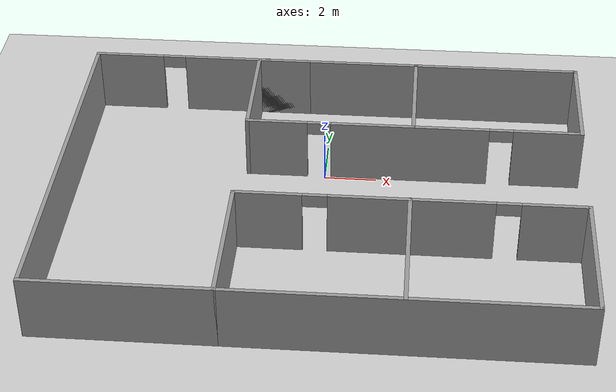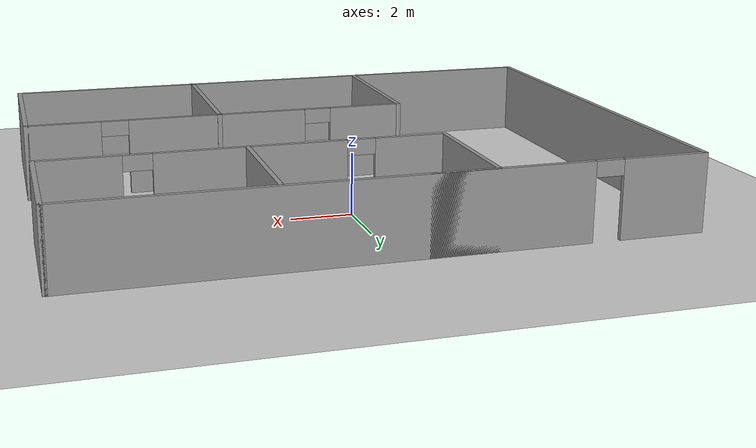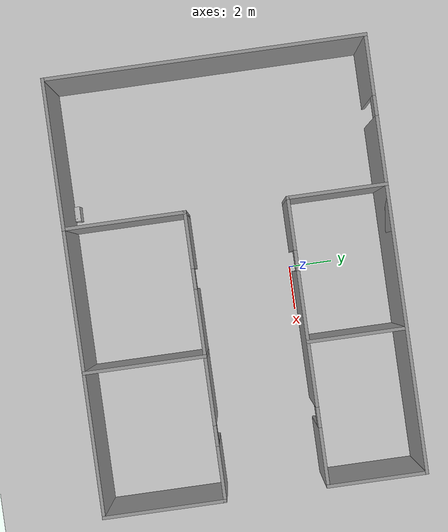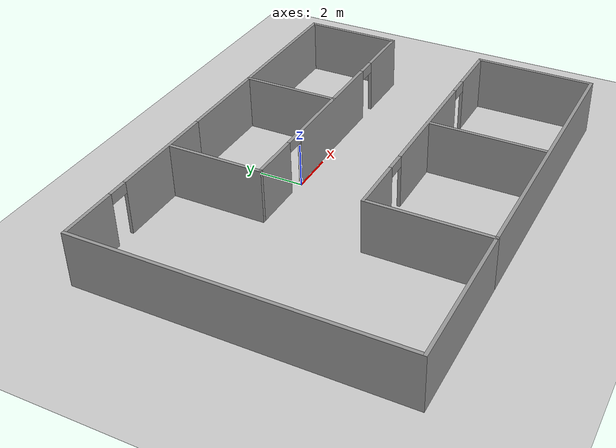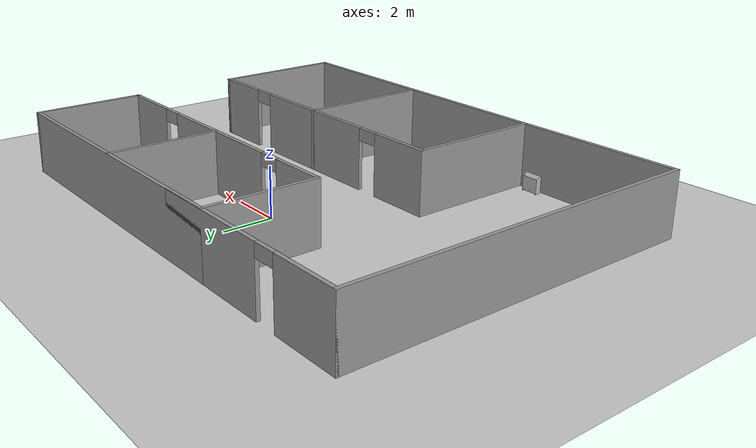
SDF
<sdf version="1.7">
 <world name="default">
  <light name="sun" type="directional">
   <pose>0 0 10 0 -0 0</pose>
   <diffuse>0.8 0.8 0.8 1</diffuse>
   <specular>0.2 0.2 0.2 1</specular>
   <attenuation>
    <range>1000</range>
    <constant>0.9</constant>
    <linear>0.01</linear>
    <quadratic>0.001</quadratic>
   </attenuation>
   <direction>-0.5 0.1 -0.9</direction>
   <spot><inner_angle>0</inner_angle><outer_angle>0</outer_angle><falloff>0</falloff></spot>
  </light>
  <model name="ground_plane">
   <static>1</static>
   <link name="link">
    <collision name="collision">
     <geometry><plane><normal>0 0 1</normal><size>100 100</size></plane></geometry>
     <surface>
      <contact><collide_bitmask>65535</collide_bitmask></contact>
      <friction><ode><mu>100</mu><mu2>50</mu2></ode></friction>
     </surface>
    </collision>
    <visual name="visual">
     <cast_shadows>0</cast_shadows>
     <geometry><plane><normal>0 0 1</normal><size>100 100</size></plane></geometry>
     <material>
      <script><uri>file://media/materials/scripts/gazebo.material</uri><name>Gazebo/Grey</name></script>
     </material>
    </visual>
   </link>
  </model>
  <gravity>0 0 -9.8</gravity>
  <magnetic_field>6e-06 2.3e-05 -4.2e-05</magnetic_field>
  <atmosphere type="adiabatic"/>
  <physics type="ode">
   <max_step_size>0.001</max_step_size>
   <real_time_factor>1</real_time_factor>
   <real_time_update_rate>1000</real_time_update_rate>
  </physics>
  <scene><ambient>0.4 0.4 0.4 1</ambient><background>0.7 0.7 0.7 1</background><shadows>1</shadows></scene>
  <spherical_coordinates>
   <surface_model>EARTH_WGS84</surface_model>
   <latitude_deg>0</latitude_deg>
   <longitude_deg>0</longitude_deg>
   <elevation>0</elevation>
   <heading_deg>0</heading_deg>
  </spherical_coordinates>
  <model name="1st_floor">
   <pose>0.067463 -2.62311 0 0 -0 0</pose>
   <link name="Wall_10">
    <collision name="Wall_10_Collision">
     <geometry><box><size>4.5 0.15 2.5</size></box></geometry>
     <pose>0 0 1.25 0 -0 0</pose>
    </collision>
    <visual name="Wall_10_Visual">
     <pose>0 0 1.25 0 -0 0</pose>
     <geometry><box><size>4.5 0.15 2.5</size></box></geometry>
     <material>
      <script><uri>file://media/materials/scripts/gazebo.material</uri><name>Gazebo/Grey</name></script>
      <ambient>1 1 1 1</ambient>
     </material>
     <meta><layer>0</layer></meta>
    </visual>
    <pose>-3.06746 4.95011 0 0 -0 1.5708</pose>
   </link>
   <link name="Wall_11">
    <collision name="Wall_11_Collision">
     <geometry><box><size>12.8825 0.15 2.5</size></box></geometry>
     <pose>0 0 1.25 0 -0 0</pose>
    </collision>
    <visual name="Wall_11_Visual">
     <pose>0 0 1.25 0 -0 0</pose>
     <geometry><box><size>12.8825 0.15 2.5</size></box></geometry>
     <material>
      <script><uri>file://media/materials/scripts/gazebo.material</uri><name>Gazebo/Grey</name></script>
      <ambient>1 1 1 1</ambient>
     </material>
     <meta><layer>0</layer></meta>
    </visual>
    <pose>3.29904 7.12511 0 0 -0 0</pose>
   </link>
   <link name="Wall_12">
    <collision name="Wall_12_Collision">
     <geometry><box><size>4.5 0.15 2.5</size></box></geometry>
     <pose>0 0 1.25 0 -0 0</pose>
    </collision>
    <visual name="Wall_12_Visual">
     <pose>0 0 1.25 0 -0 0</pose>
     <geometry><box><size>4.5 0.15 2.5</size></box></geometry>
     <material>
      <script><uri>file://media/materials/scripts/gazebo.material</uri><name>Gazebo/Grey</name></script>
      <ambient>1 1 1 1</ambient>
     </material>
     <meta><layer>0</layer></meta>
    </visual>
    <pose>9.66554 4.95011 0 0 -0 -1.5708</pose>
   </link>
   <link name="Wall_14">
    <collision name="Wall_14_Collision">
     <geometry><box><size>6.74807 0.15 2.5</size></box></geometry>
     <pose>0 0 1.25 0 -0 0</pose>
    </collision>
    <visual name="Wall_14_Visual">
     <pose>0 0 1.25 0 -0 0</pose>
     <geometry><box><size>6.74807 0.15 2.5</size></box></geometry>
     <material>
      <script><uri>file://media/materials/scripts/gazebo.material</uri><name>Gazebo/Grey</name></script>
      <ambient>1 1 1 1</ambient>
     </material>
     <meta><layer>0</layer></meta>
    </visual>
    <pose>-6.3665 -7.125 0 0 -0 -3.14156</pose>
   </link>
   <link name="Wall_15">
    <collision name="Wall_15_Collision">
     <geometry><box><size>14.4002 0.15 2.5</size></box></geometry>
     <pose>0 0 1.25 0 -0 0</pose>
    </collision>
    <visual name="Wall_15_Visual">
     <pose>0 0 1.25 0 -0 0</pose>
     <geometry><box><size>14.4002 0.15 2.5</size></box></geometry>
     <material>
      <script><uri>file://media/materials/scripts/gazebo.material</uri><name>Gazebo/Grey</name></script>
      <ambient>1 1 1 1</ambient>
     </material>
     <meta><layer>0</layer></meta>
    </visual>
    <pose>-9.6655 1e-06 0 0 -0 1.57079</pose>
   </link>
   <link name="Wall_16">
    <pose>-5.36546 7.12511 0 0 -0 0</pose>
    <visual name="Wall_16_Visual_0">
     <pose>-2.99381 0 1.25 0 -0 0</pose>
     <geometry><box><size>2.76237 0.15 2.5</size></box></geometry>
     <material>
      <script><uri>file://media/materials/scripts/gazebo.material</uri><name>Gazebo/Grey</name></script>
      <ambient>1 1 1 1</ambient>
     </material>
     <meta><layer>0</layer></meta>
    </visual>
    <collision name="Wall_16_Collision_0">
     <geometry><box><size>2.76237 0.15 2.5</size></box></geometry>
     <pose>-2.99381 0 1.25 0 -0 0</pose>
    </collision>
    <visual name="Wall_16_Visual_1">
     <pose>1.83119 0 1.25 0 -0 0</pose>
     <geometry><box><size>5.08763 0.15 2.5</size></box></geometry>
     <material>
      <script><uri>file://media/materials/scripts/gazebo.material</uri><name>Gazebo/Grey</name></script>
      <ambient>1 1 1 1</ambient>
     </material>
     <meta><layer>0</layer></meta>
    </visual>
    <collision name="Wall_16_Collision_1">
     <geometry><box><size>5.08763 0.15 2.5</size></box></geometry>
     <pose>1.83119 0 1.25 0 -0 0</pose>
    </collision>
    <visual name="Wall_16_Visual_2">
     <pose>-1.16263 0 2.25 0 -0 0</pose>
     <geometry><box><size>0.9 0.15 0.5</size></box></geometry>
     <material>
      <script><uri>file://media/materials/scripts/gazebo.material</uri><name>Gazebo/Grey</name></script>
      <ambient>1 1 1 1</ambient>
     </material>
     <meta><layer>0</layer></meta>
    </visual>
    <collision name="Wall_16_Collision_2">
     <geometry><box><size>0.9 0.15 0.5</size></box></geometry>
     <pose>-1.16263 0 2.25 0 -0 0</pose>
    </collision>
   </link>
   <link name="Wall_18">
    <collision name="Wall_18_Collision">
     <geometry><box><size>5.5 0.15 2.5</size></box></geometry>
     <pose>0 0 1.25 0 -0 0</pose>
    </collision>
    <visual name="Wall_18_Visual">
     <pose>0 0 1.25 0 -0 0</pose>
     <geometry><box><size>5.5 0.15 2.5</size></box></geometry>
     <material>
      <script><uri>file://media/materials/scripts/gazebo.material</uri><name>Gazebo/Grey</name></script>
      <ambient>1 1 1 1</ambient>
     </material>
     <meta><layer>0</layer></meta>
    </visual>
    <pose>3.28854 -4.44389 0 0 -0 -1.5708</pose>
   </link>
   <link name="Wall_22">
    <collision name="Wall_22_Collision">
     <geometry><box><size>4.45857 0.15 2.5</size></box></geometry>
     <pose>0 0 1.25 0 -0 0</pose>
    </collision>
    <visual name="Wall_22_Visual">
     <pose>0 0 1.25 0 -0 0</pose>
     <geometry><box><size>4.45857 0.15 2.5</size></box></geometry>
     <material>
      <script><uri>file://media/materials/scripts/gazebo.material</uri><name>Gazebo/Grey</name></script>
      <ambient>1 1 1 1</ambient>
     </material>
     <meta><layer>0</layer></meta>
    </visual>
    <pose>3.28854 4.92961 0 0 -0 1.5708</pose>
   </link>
   <link name="Wall_3">
    <pose>3.29904 -1.77489 0 0 -0 0</pose>
    <visual name="Wall_3_Visual_0">
     <pose>-5.15805 0 1.25 0 -0 0</pose>
     <geometry><box><size>2.56691 0.15 2.5</size></box></geometry>
     <material>
      <script><uri>file://media/materials/scripts/gazebo.material</uri><name>Gazebo/Grey</name></script>
      <ambient>1 1 1 1</ambient>
     </material>
     <meta><layer>0</layer></meta>
    </visual>
    <collision name="Wall_3_Collision_0">
     <geometry><box><size>2.56691 0.15 2.5</size></box></geometry>
     <pose>-5.15805 0 1.25 0 -0 0</pose>
    </collision>
    <visual name="Wall_3_Visual_1">
     <pose>0.040515 0 1.25 0 -0 0</pose>
     <geometry><box><size>6.03022 0.15 2.5</size></box></geometry>
     <material>
      <script><uri>file://media/materials/scripts/gazebo.material</uri><name>Gazebo/Grey</name></script>
      <ambient>1 1 1 1</ambient>
     </material>
     <meta><layer>0</layer></meta>
    </visual>
    <collision name="Wall_3_Collision_1">
     <geometry><box><size>6.03022 0.15 2.5</size></box></geometry>
     <pose>0.040515 0 1.25 0 -0 0</pose>
    </collision>
    <visual name="Wall_3_Visual_2">
     <pose>5.19856 0 1.25 0 -0 0</pose>
     <geometry><box><size>2.48588 0.15 2.5</size></box></geometry>
     <material>
      <script><uri>file://media/materials/scripts/gazebo.material</uri><name>Gazebo/Grey</name></script>
      <ambient>1 1 1 1</ambient>
     </material>
     <meta><layer>0</layer></meta>
    </visual>
    <collision name="Wall_3_Collision_2">
     <geometry><box><size>2.48588 0.15 2.5</size></box></geometry>
     <pose>5.19856 0 1.25 0 -0 0</pose>
    </collision>
    <visual name="Wall_3_Visual_3">
     <pose>-3.42459 0 2.25 0 -0 0</pose>
     <geometry><box><size>0.9 0.15 0.5</size></box></geometry>
     <material>
      <script><uri>file://media/materials/scripts/gazebo.material</uri><name>Gazebo/Grey</name></script>
      <ambient>1 1 1 1</ambient>
     </material>
     <meta><layer>0</layer></meta>
    </visual>
    <collision name="Wall_3_Collision_3">
     <geometry><box><size>0.9 0.15 0.5</size></box></geometry>
     <pose>-3.42459 0 2.25 0 -0 0</pose>
    </collision>
    <visual name="Wall_3_Visual_4">
     <pose>3.50562 0 2.25 0 -0 0</pose>
     <geometry><box><size>0.9 0.15 0.5</size></box></geometry>
     <material>
      <script><uri>file://media/materials/scripts/gazebo.material</uri><name>Gazebo/Grey</name></script>
      <ambient>1 1 1 1</ambient>
     </material>
     <meta><layer>0</layer></meta>
    </visual>
    <collision name="Wall_3_Collision_4">
     <geometry><box><size>0.9 0.15 0.5</size></box></geometry>
     <pose>3.50562 0 2.25 0 -0 0</pose>
    </collision>
   </link>
   <link name="Wall_4">
    <collision name="Wall_4_Collision">
     <geometry><box><size>5.5 0.15 2.5</size></box></geometry>
     <pose>0 0 1.25 0 -0 0</pose>
    </collision>
    <visual name="Wall_4_Visual">
     <pose>0 0 1.25 0 -0 0</pose>
     <geometry><box><size>5.5 0.15 2.5</size></box></geometry>
     <material>
      <script><uri>file://media/materials/scripts/gazebo.material</uri><name>Gazebo/Grey</name></script>
      <ambient>1 1 1 1</ambient>
     </material>
     <meta><layer>0</layer></meta>
    </visual>
    <pose>9.66554 -4.44989 0 0 -0 -1.5708</pose>
   </link>
   <link name="Wall_5">
    <collision name="Wall_5_Collision">
     <geometry><box><size>12.883 0.15 2.5</size></box></geometry>
     <pose>0 0 1.25 0 -0 0</pose>
    </collision>
    <visual name="Wall_5_Visual">
     <pose>0 0 1.25 0 -0 0</pose>
     <geometry><box><size>12.883 0.15 2.5</size></box></geometry>
     <material>
      <script><uri>file://media/materials/scripts/gazebo.material</uri><name>Gazebo/Grey</name></script>
      <ambient>1 1 1 1</ambient>
     </material>
     <meta><layer>0</layer></meta>
    </visual>
    <pose>3.29904 -7.12489 0 0 -0 3.14159</pose>
   </link>
   <link name="Wall_6">
    <collision name="Wall_6_Collision">
     <geometry><box><size>5.5 0.15 2.5</size></box></geometry>
     <pose>0 0 1.25 0 -0 0</pose>
    </collision>
    <visual name="Wall_6_Visual">
     <pose>0 0 1.25 0 -0 0</pose>
     <geometry><box><size>5.5 0.15 2.5</size></box></geometry>
     <material>
      <script><uri>file://media/materials/scripts/gazebo.material</uri><name>Gazebo/Grey</name></script>
      <ambient>1 1 1 1</ambient>
     </material>
     <meta><layer>0</layer></meta>
    </visual>
    <pose>-3.06746 -4.44989 0 0 -0 1.5708</pose>
   </link>
   <link name="Wall_9">
    <pose>3.29904 2.77511 0 0 -0 3.14159</pose>
    <visual name="Wall_9_Visual_0">
     <pose>-5.11049 0 1.25 0 -0 0</pose>
     <geometry><box><size>2.66152 0.15 2.5</size></box></geometry>
     <material>
      <script><uri>file://media/materials/scripts/gazebo.material</uri><name>Gazebo/Grey</name></script>
      <ambient>1 1 1 1</ambient>
     </material>
     <meta><layer>0</layer></meta>
    </visual>
    <collision name="Wall_9_Collision_0">
     <geometry><box><size>2.66152 0.15 2.5</size></box></geometry>
     <pose>-5.11049 0 1.25 0 -0 0</pose>
    </collision>
    <visual name="Wall_9_Visual_1">
     <pose>0.135379 0 1.25 0 -0 0</pose>
     <geometry><box><size>6.03022 0.15 2.5</size></box></geometry>
     <material>
      <script><uri>file://media/materials/scripts/gazebo.material</uri><name>Gazebo/Grey</name></script>
      <ambient>1 1 1 1</ambient>
     </material>
     <meta><layer>0</layer></meta>
    </visual>
    <collision name="Wall_9_Collision_1">
     <geometry><box><size>6.03022 0.15 2.5</size></box></geometry>
     <pose>0.135379 0 1.25 0 -0 0</pose>
    </collision>
    <visual name="Wall_9_Visual_2">
     <pose>5.24587 0 1.25 0 -0 0</pose>
     <geometry><box><size>2.39077 0.15 2.5</size></box></geometry>
     <material>
      <script><uri>file://media/materials/scripts/gazebo.material</uri><name>Gazebo/Grey</name></script>
      <ambient>1 1 1 1</ambient>
     </material>
     <meta><layer>0</layer></meta>
    </visual>
    <collision name="Wall_9_Collision_2">
     <geometry><box><size>2.39077 0.15 2.5</size></box></geometry>
     <pose>5.24587 0 1.25 0 -0 0</pose>
    </collision>
    <visual name="Wall_9_Visual_3">
     <pose>-3.32973 0 2.25 0 -0 0</pose>
     <geometry><box><size>0.9 0.15 0.5</size></box></geometry>
     <material>
      <script><uri>file://media/materials/scripts/gazebo.material</uri><name>Gazebo/Grey</name></script>
      <ambient>1 1 1 1</ambient>
     </material>
     <meta><layer>0</layer></meta>
    </visual>
    <collision name="Wall_9_Collision_3">
     <geometry><box><size>0.9 0.15 0.5</size></box></geometry>
     <pose>-3.32973 0 2.25 0 -0 0</pose>
    </collision>
    <visual name="Wall_9_Visual_4">
     <pose>3.60049 0 2.25 0 -0 0</pose>
     <geometry><box><size>0.9 0.15 0.5</size></box></geometry>
     <material>
      <script><uri>file://media/materials/scripts/gazebo.material</uri><name>Gazebo/Grey</name></script>
      <ambient>1 1 1 1</ambient>
     </material>
     <meta><layer>0</layer></meta>
    </visual>
    <collision name="Wall_9_Collision_4">
     <geometry><box><size>0.9 0.15 0.5</size></box></geometry>
     <pose>3.60049 0 2.25 0 -0 0</pose>
    </collision>
   </link>
   <static>1</static>
  </model>
  <model name="HospitalRobotCharger">
   <link name="body">
    <visual name="visual">
     <geometry><mesh><uri>model://HospitalRobotCharger/meshes/HospitalRobotCharger.obj</uri></mesh></geometry>
    </visual>
    <collision name="collision">
     <geometry><mesh><uri>model://HospitalRobotCharger/meshes/HospitalRobotCharger.obj</uri></mesh></geometry>
    </collision>
    <inertial>
     <inertia><ixx>1</ixx><ixy>0</ixy><ixz>0</ixz><iyy>1</iyy><iyz>0</iyz><izz>1</izz></inertia>
     <mass>1</mass>
    </inertial>
   </link>
   <pose>-3.79665 -9.44618 0 0 -0 1.55665</pose>
  </model>
 </world>
</sdf>
